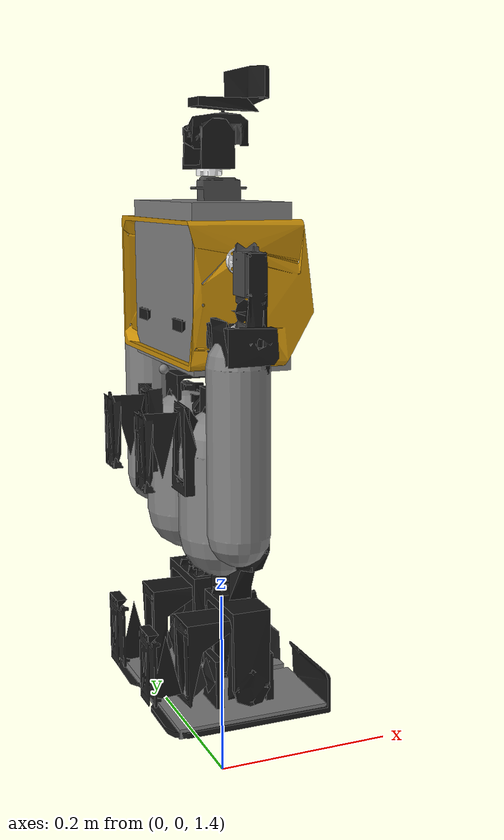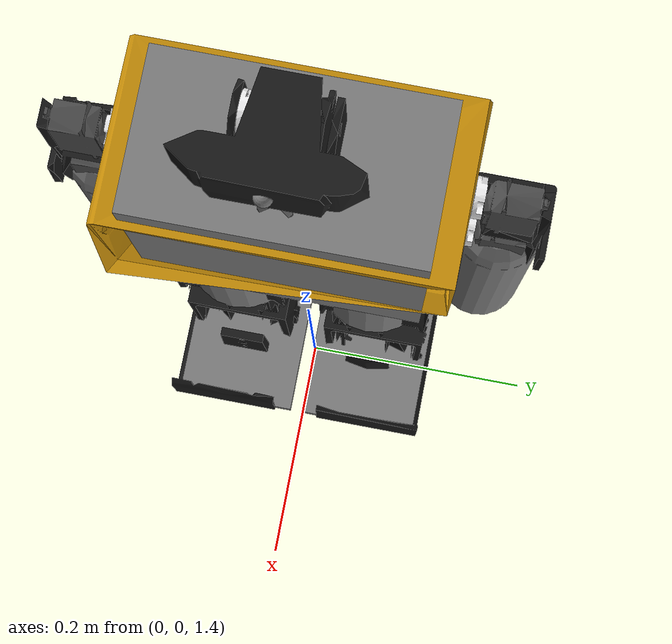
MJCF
<mujoco model="bez3">
	<include file="bez3.xml" />

	<visual>
		<headlight diffuse="0.6 0.6 0.6" ambient="0.3 0.3 0.3" specular="0 0 0"/>
		<rgba haze="0.15 0.25 0.35 1"/>
		<global azimuth="160" elevation="-20"/>
	</visual>

	<asset>
		<texture type="skybox" builtin="gradient" rgb1="0.3 0.5 0.7" rgb2="0 0 0" width="512" height="3072"/>
		<texture type="2d" name="groundplane" builtin="checker" mark="edge" rgb1="0.2 0.3 0.4" rgb2="0.1 0.2 0.3"
			markrgb="0.8 0.8 0.8" width="300" height="300"/>
		<material name="groundplane" texture="groundplane" texuniform="true" texrepeat="5 5" reflectance="0.2"/>
	</asset>

	<worldbody>
		<light pos="0 0 3.5" dir="0 0 -1" directional="true"/>
		<geom name="floor" size="0 0 0.05" pos="0 0 0" type="plane" material="groundplane"/>
	</worldbody>
</mujoco>

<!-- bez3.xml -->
<mujoco model="bez3">
  <compiler meshdir="meshes/bez3/" angle="radian" />
  <!--include file="common.xml" /-->

   <default>
        <default class="mx106">
            <position kp="21" forcerange="-8 8" />
            <joint damping="1.7" armature="0.025" frictionloss="0.10" />
        </default>
        <default class="mx64">
          <joint damping="1.084" armature="0.045" />
      <general ctrllimited="false" forcelimited="false" forcerange="-5 5" gainprm="10" biastype="affine" biasprm="0 0 -3.33" />
        </default>
		<default class="xm430">
            <position kp="21.1" ctrlrange="-3.141592 3.141592" forcerange="-5 5"/>
            <joint damping="1.084" armature="0.045" frictionloss="0.03"/>
        </default>
    </default>

  <asset>
    <mesh name="base_link" file="base_link.stl" scale="0.001 0.001 0.001"/>
    <mesh name="torso_1" file="torso_1.stl" scale="0.001 0.001 0.001"/>
    <mesh name="JX_servo_v12_1" file="JX_servo_v12_1.stl" scale="0.001 0.001 0.001"/>
    <mesh name="left_hip_side_1" file="left_hip_side_1.stl" scale="0.001 0.001 0.001"/>
    <mesh name="JX_servo_v12_8" file="JX_servo_v12_8.stl" scale="0.001 0.001 0.001"/>
    <mesh name="left_hip_front_1" file="left_hip_front_1.stl" scale="0.001 0.001 0.001"/>
    <mesh name="JX_servo_v12_9" file="JX_servo_v12_9.stl" scale="0.001 0.001 0.001"/>
    <mesh name="left_thigh_1" file="left_thigh_1.stl" scale="0.001 0.001 0.001"/>
    <mesh name="JX_servo_v12_11" file="JX_servo_v12_11.stl" scale="0.001 0.001 0.001"/>
    <mesh name="left_calve_1" file="left_calve_1.stl" scale="0.001 0.001 0.001"/>
    <mesh name="JX_servo_v12_12" file="JX_servo_v12_12.stl" scale="0.001 0.001 0.001"/>
    <mesh name="left_hip_front_2" file="left_hip_front_2.stl" scale="0.001 0.001 0.001"/>
    <mesh name="JX_servo_v12_13" file="JX_servo_v12_13.stl" scale="0.001 0.001 0.001"/>
    <mesh name="JX_servo_v12_14" file="JX_servo_v12_14.stl" scale="0.001 0.001 0.001"/>
    <mesh name="right_hip_side_1" file="right_hip_side_1.stl" scale="0.001 0.001 0.001"/>
    <mesh name="JX_servo_v12_15" file="JX_servo_v12_15.stl" scale="0.001 0.001 0.001"/>
    <mesh name="right_ankle_1" file="right_ankle_1.stl" scale="0.001 0.001 0.001"/>
    <mesh name="JX_servo_v12_16" file="JX_servo_v12_16.stl" scale="0.001 0.001 0.001"/>
    <mesh name="right_thigh_1" file="right_thigh_1.stl" scale="0.001 0.001 0.001"/>
    <mesh name="JX_servo_v12_17" file="JX_servo_v12_17.stl" scale="0.001 0.001 0.001"/>
    <mesh name="right_calve_1" file="right_calve_1.stl" scale="0.001 0.001 0.001"/>
    <mesh name="JX_servo_v12_18" file="JX_servo_v12_18.stl" scale="0.001 0.001 0.001"/>
    <mesh name="right_ankle_2" file="right_ankle_2.stl" scale="0.001 0.001 0.001"/>
    <mesh name="JX_servo_v12_19" file="JX_servo_v12_19.stl" scale="0.001 0.001 0.001"/>
    <mesh name="25t-servo-hub_1" file="25t-servo-hub_1.stl" scale="0.001 0.001 0.001"/>
    <mesh name="gobilda-servo_1" file="gobilda-servo_1.stl" scale="0.001 0.001 0.001"/>
    <mesh name="left_bicep_1" file="left_bicep_1.stl" scale="0.001 0.001 0.001"/>
    <mesh name="gobilda-servo_3" file="gobilda-servo_3.stl" scale="0.001 0.001 0.001"/>
    <mesh name="25t-servo-hub_2" file="25t-servo-hub_2.stl" scale="0.001 0.001 0.001"/>
    <mesh name="elbow-attach_1" file="elbow-attach_1.stl" scale="0.001 0.001 0.001"/>
    <mesh name="left_forearm_1" file="left_forearm_1.stl" scale="0.001 0.001 0.001"/>
    <mesh name="elbow-bearing_1" file="elbow-bearing_1.stl" scale="0.001 0.001 0.001"/>
    <mesh name="25t-servo-hub_Mirror__1" file="25t-servo-hub_Mirror__1.stl" scale="0.001 0.001 0.001"/>
    <mesh name="gobilda-servo_Mirror__1" file="gobilda-servo_Mirror__1.stl" scale="0.001 0.001 0.001"/>
    <mesh name="right_bicep_1" file="right_bicep_1.stl" scale="0.001 0.001 0.001"/>
    <mesh name="gobilda-servo_Mirror__2" file="gobilda-servo_Mirror__2.stl" scale="0.001 0.001 0.001"/>
    <mesh name="25t-servo-hub_Mirror__2" file="25t-servo-hub_Mirror__2.stl" scale="0.001 0.001 0.001"/>
    <mesh name="elbow-attach_Mirror__1" file="elbow-attach_Mirror__1.stl" scale="0.001 0.001 0.001"/>
    <mesh name="right_forearm_1" file="right_forearm_1.stl" scale="0.001 0.001 0.001"/>
    <mesh name="elbow-bearing_Mirror__1" file="elbow-bearing_Mirror__1.stl" scale="0.001 0.001 0.001"/>
    <mesh name="custom_servo_support__lower_neck__v2_1" file="custom_servo_support__lower_neck__v2_1.stl" scale="0.001 0.001 0.001"/>
    <mesh name="gobilda-servo_4" file="gobilda-servo_4.stl" scale="0.001 0.001 0.001"/>
    <mesh name="25t-servo-hub_3" file="25t-servo-hub_3.stl" scale="0.001 0.001 0.001"/>
    <mesh name="neck_1" file="neck_1.stl" scale="0.001 0.001 0.001"/>
    <mesh name="25t-servo-hub_4" file="25t-servo-hub_4.stl" scale="0.001 0.001 0.001"/>
    <mesh name="gobilda-servo_5" file="gobilda-servo_5.stl" scale="0.001 0.001 0.001"/>
    <mesh name="head_1" file="head_1.stl" scale="0.001 0.001 0.001"/>
    <mesh name="camera_1" file="camera_1.stl" scale="0.001 0.001 0.001"/>
    <mesh name="camera-link_1" file="camera-link_1.stl" scale="0.001 0.001 0.001"/>
    <mesh name="imu-link_1" file="imu-link_1.stl" scale="0.001 0.001 0.001"/>
    <mesh name="Component32_1" file="Component32_1.stl" scale="0.001 0.001 0.001"/>
    <mesh name="TX2_board_v2_1" file="TX2_board_v2_1.stl" scale="0.001 0.001 0.001"/>
    <mesh name="left_foot_1" file="left_foot_1.stl" scale="0.001 0.001 0.001"/>
    <mesh name="right_foot_1" file="right_foot_1.stl" scale="0.001 0.001 0.001"/>
  </asset>
    <option noslip_iterations="1"></option>
  <worldbody>
    <body name="torso_2023" pos="0 0 2"> <!-- euler="0 1.67 0"-->
      <freejoint name="root" />
        <site name="torso" pos=" 0 0 -0.075"/>
      <site name="trunk" pos="-0.06 0 -0.15" />

      <body name="torso_rot" euler="0 0 0">
        <geom type="mesh" contype="0" conaffinity="0" group="1" density="0" rgba="0.627451 0.627451 0.627451 1" mesh="base_link"/>
        <!--geom type="mesh" rgba="0.627451 0.627451 0.627451 1" mesh="base_link"/-->
        <geom type="mesh" contype="0" conaffinity="0" group="1" mass="0.1" density="0" rgba="0.784314 0.556863 0.027451 1" mesh="torso_1"/>
        <geom pos="-0.01 0 -0.064" type="box" mass="0" size="0.05 0.09 0.08" />
        <!--geom type="mesh" rgba="0.784314 0.556863 0.027451 1" mesh="torso_1"/-->
        <geom type="mesh" contype="0" conaffinity="0" group="1" density="0" rgba="0.0980392 0.0980392 0.0980392 1" mesh="JX_servo_v12_1"/>
        <!--geom type="mesh" rgba="0.0980392 0.0980392 0.0980392 1" mesh="JX_servo_v12_1"/-->
        <geom type="mesh" contype="0" conaffinity="0" group="1" density="0" rgba="0.0980392 0.0980392 0.0980392 1" mesh="JX_servo_v12_14"/>
        <!--geom type="mesh" rgba="0.0980392 0.0980392 0.0980392 1" mesh="JX_servo_v12_14"/-->
        <geom type="mesh" contype="0" conaffinity="0" group="1" density="0" rgba="0.960784 0.960784 0.964706 1" mesh="25t-servo-hub_1"/>
        <!--geom type="mesh" rgba="0.960784 0.960784 0.964706 1" mesh="25t-servo-hub_1"/-->
        <geom type="mesh" contype="0" conaffinity="0" group="1" density="0" rgba="0.960784 0.960784 0.964706 1" mesh="25t-servo-hub_Mirror__1"/>
        <!--geom type="mesh" rgba="0.960784 0.960784 0.964706 1" mesh="25t-servo-hub_Mirror__1"/-->
        <geom type="mesh" contype="0" conaffinity="0" group="1" density="0" rgba="0.0980392 0.0980392 0.0980392 1" mesh="custom_servo_support__lower_neck__v2_1"/>
        <!--geom type="mesh" rgba="0.0980392 0.0980392 0.0980392 1" mesh="custom_servo_support__lower_neck__v2_1"/-->
        <geom type="mesh" contype="0" conaffinity="0" group="1" density="0" rgba="0.290196 0.290196 0.290196 1" mesh="gobilda-servo_4"/>
        <!--geom type="mesh" rgba="0.290196 0.290196 0.290196 1" mesh="gobilda-servo_4"/-->
        <geom type="mesh" contype="0" conaffinity="0" group="1" density="0" rgba="0.160784 0.505882 0.807843 1" mesh="Component32_1"/>
        <!--geom type="mesh" rgba="0.160784 0.505882 0.807843 1" mesh="Component32_1"/-->
        <geom type="mesh" contype="0" conaffinity="0" group="1" density="0" rgba="0.7 0.7 0.7 1" mesh="TX2_board_v2_1"/>
        <!--geom type="mesh" rgba="0.7 0.7 0.7 1" mesh="TX2_board_v2_1"/-->
        <body name="left_hip_side_1" pos="-0.0045 0.0545 -0.16339">
          <inertial pos="-0.000660176 7.98424e-10 -0.0211415" quat="0.5 0.5 0.5 0.5" mass="0.0189998" diaginertia="1.8e-05 1.4e-05 9e-06"/>
          <joint class="mx64" name="left_hip_yaw" pos="0 0 0" axis="0 0 1"  />
          <geom pos="0.0045 -0.0545 0.16339" type="mesh" contype="0" conaffinity="0" group="1" density="0" rgba="0.0980392 0.0980392 0.0980392 1" mesh="left_hip_side_1"/>
          <!--geom pos="0.0045 -0.0545 0.16339" type="mesh" rgba="0.0980392 0.0980392 0.0980392 1" mesh="left_hip_side_1"/-->
          <body name="JX_servo_v12_8" pos="-0.03 0 -0.035336">
            <inertial pos="-0.00457814 -0.000422492 -0.0194649" quat="0.513019 0.493752 0.510815 0.481755" mass="0.423047" diaginertia="0.000742563 0.0006386 0.000268572"/>
             <joint class="mx64" name="left_hip_roll" pos="0 0 0" axis="-1 0 0"   />
            <geom pos="0.0345 -0.0545 0.198726" type="mesh" contype="0" conaffinity="0" group="1" density="0" rgba="0.0980392 0.0980392 0.0980392 1" mesh="JX_servo_v12_8"/>
            <!--geom pos="0.0345 -0.0545 0.198726" type="mesh" rgba="0.0980392 0.0980392 0.0980392 1" mesh="JX_servo_v12_8"/-->
            <geom pos="0.0345 -0.0545 0.198726" type="mesh" contype="0" conaffinity="0" group="1" density="0" rgba="0.0980392 0.0980392 0.0980392 1" mesh="left_hip_front_1"/>
            <!--geom pos="0.0345 -0.0545 0.198726" type="mesh" rgba="0.0980392 0.0980392 0.0980392 1" mesh="left_hip_front_1"/-->
            <geom pos="0.0345 -0.0545 0.198726" type="mesh" contype="0" conaffinity="0" group="1" density="0" rgba="0.0980392 0.0980392 0.0980392 1" mesh="JX_servo_v12_9"/>
            <!--geom pos="0.0345 -0.0545 0.198726" type="mesh" rgba="0.0980392 0.0980392 0.0980392 1" mesh="JX_servo_v12_9"/-->
            <body name="left_thigh_1" pos="0.0295 0.0379 0">
              <inertial pos="0.00355223 -0.037286 -0.0673853" quat="0.999801 0 -0.0199562 0" mass="0.0469874" diaginertia="0.00014412 8.9e-05 6.88802e-05"/>
               <joint class="mx64" name="left_hip_pitch" pos="0 0 0" axis="0 1 0"   />
              <geom pos="0.005 -0.0924 0.198726" type="mesh" contype="0" conaffinity="0" group="1" density="0" rgba="0.0980392 0.0980392 0.0980392 1" mesh="left_thigh_1"/>
              <!--geom pos="0.005 -0.0924 0.198726" type="mesh" rgba="0.0980392 0.0980392 0.0980392 1" mesh="left_thigh_1"/-->
              <geom pos="-0.014 -0.04 -0.07" type="capsule" mass="0" size="0.043 0.043 0.12" />
              <body name="JX_servo_v12_11" pos="0 0 -0.124">
                <inertial pos="-7.61703e-06 -0.038798 -0.0287705" quat="0.99982 -0.0189961 0.000220296 2.84536e-05" mass="0.234224" diaginertia="0.000368962 0.000288189 0.000119773"/>
                 <joint class="mx64" name="left_knee" pos="0 0 0" axis="0 1 0"   />
                <geom pos="0.005 -0.0924 0.322726" type="mesh" contype="0" conaffinity="0" group="1" density="0" rgba="0.0980392 0.0980392 0.0980392 1" mesh="JX_servo_v12_11"/>
                <!--geom pos="0.005 -0.0924 0.322726" type="mesh" rgba="0.0980392 0.0980392 0.0980392 1" mesh="JX_servo_v12_11"/-->
                <geom pos="0.005 -0.0924 0.322726" type="mesh" contype="0" conaffinity="0" group="1" density="0" rgba="0.0980392 0.0980392 0.0980392 1" mesh="left_calve_1"/>
                <!--geom pos="0.005 -0.0924 0.322726" type="mesh" rgba="0.0980392 0.0980392 0.0980392 1" mesh="left_calve_1"/-->
                <body name="JX_servo_v12_12" pos="-5e-05 0.0016 -0.139905">
                  <inertial pos="-0.0340781 -0.039009 0.0194651" quat="0.485816 0.512986 0.481901 0.518266" mass="0.423047" diaginertia="0.000742644 0.000638296 0.000268545"/>
                   <joint class="mx64" name="left_ankle_pitch" pos="0 0 0" axis="0 1 0"   />
                  <geom pos="0.00505 -0.094 0.462631" type="mesh" contype="0" conaffinity="0" group="1" density="0" rgba="0.0980392 0.0980392 0.0980392 1" mesh="JX_servo_v12_12"/>
                  <!--geom pos="0.00505 -0.094 0.462631" type="mesh" rgba="0.0980392 0.0980392 0.0980392 1" mesh="JX_servo_v12_12"/-->
                  <geom pos="0.00505 -0.094 0.462631" type="mesh" contype="0" conaffinity="0" group="1" density="0" rgba="0.0980392 0.0980392 0.0980392 1" mesh="left_hip_front_2"/>
                  <!--geom pos="0.00505 -0.094 0.462631" type="mesh" rgba="0.0980392 0.0980392 0.0980392 1" mesh="left_hip_front_2"/-->
                  <geom pos="0.00505 -0.094 0.462631" type="mesh" contype="0" conaffinity="0" group="1" density="0" rgba="0.0980392 0.0980392 0.0980392 1" mesh="JX_servo_v12_13"/>
                  <!--geom pos="0.00505 -0.094 0.462631" type="mesh" rgba="0.0980392 0.0980392 0.0980392 1" mesh="JX_servo_v12_13"/-->
                  <body name="left_foot_1" pos="-0.0295 -0.039 0">
                    <inertial pos="0.0356643 0.00794366 -0.0251471" quat="0.0747217 0.686511 0.0733634 0.719539" mass="0.123535" diaginertia="0.00035306 0.000318503 9.44367e-05"/>
                     <joint class="mx64" name="left_ankle_roll" pos="0 0 0" axis="-1 0 0"   />
                    <geom pos="0.03455 -0.055 0.462631" type="mesh" contype="0" conaffinity="0" group="1" density="0" rgba="0.0980392 0.0980392 0.0980392 1" mesh="left_foot_1"/>
                    <!--geom pos="0.03455 -0.055 0.462631" type="mesh" rgba="0.0980392 0.0980392 0.0980392 1" mesh="left_foot_1"/-->

                    <!-- MANUAL ELEMENT -->
                    <body name="left_foot" pos="0.03 0 -0.033">
                        <site name="left_foot" />
                      <geom name="left_foot" mass="0" type="box" size="0.08 0.05 0.005" />
                    </body>
                  </body>
                </body>
              </body>
            </body>
          </body>
        </body>
        <body name="right_hip_side_1" pos="-0.0045 -0.0545 -0.1634">
          <inertial pos="-0.000660176 -7.98424e-10 -0.0211416" quat="0.5 0.5 0.5 0.5" mass="0.0189998" diaginertia="1.8e-05 1.4e-05 9e-06"/>
           <joint class="mx64" name="right_hip_yaw" pos="0 0 0" axis="0 0 -1"  />
          <geom pos="0.0045 0.0545 0.1634" type="mesh" contype="0" conaffinity="0" group="1" density="0" rgba="0.0980392 0.0980392 0.0980392 1" mesh="right_hip_side_1"/>
          <!--geom pos="0.0045 0.0545 0.1634" type="mesh" rgba="0.0980392 0.0980392 0.0980392 1" mesh="right_hip_side_1"/-->
          <body name="JX_servo_v12_15" pos="-0.03 0 -0.035336">
            <inertial pos="-0.00457814 0.000422492 -0.0194649" quat="0.481755 0.510815 0.493752 0.513019" mass="0.423047" diaginertia="0.000742563 0.0006386 0.000268572"/>
             <joint class="mx64" name="right_hip_roll" pos="0 0 0" axis="1 0 0"  />
            <geom pos="0.0345 0.0545 0.198736" type="mesh" contype="0" conaffinity="0" group="1" density="0" rgba="0.0980392 0.0980392 0.0980392 1" mesh="JX_servo_v12_15"/>
            <!--geom pos="0.0345 0.0545 0.198736" type="mesh" rgba="0.0980392 0.0980392 0.0980392 1" mesh="JX_servo_v12_15"/-->
            <geom pos="0.0345 0.0545 0.198736" type="mesh" contype="0" conaffinity="0" group="1" density="0" rgba="0.0980392 0.0980392 0.0980392 1" mesh="right_ankle_1"/>
            <!--geom pos="0.0345 0.0545 0.198736" type="mesh" rgba="0.0980392 0.0980392 0.0980392 1" mesh="right_ankle_1"/-->
            <geom pos="0.0345 0.0545 0.198736" type="mesh" contype="0" conaffinity="0" group="1" density="0" rgba="0.0980392 0.0980392 0.0980392 1" mesh="JX_servo_v12_16"/>
            <!--geom pos="0.0345 0.0545 0.198736" type="mesh" rgba="0.0980392 0.0980392 0.0980392 1" mesh="JX_servo_v12_16"/-->
            <body name="right_thigh_1" pos="0.0295 -0.0379 0">
              <inertial pos="0.00355223 0.037286 -0.0673853" quat="0.999801 0 -0.0199562 0" mass="0.0469873" diaginertia="0.00014412 8.9e-05 6.88802e-05"/>
               <joint class="mx64" name="right_hip_pitch" pos="0 0 0" axis="0 1 0"  />
              <geom pos="0.005 0.0924 0.198736" type="mesh" contype="0" conaffinity="0" group="1" density="0" rgba="0.0980392 0.0980392 0.0980392 1" mesh="right_thigh_1"/>
              <!--geom pos="0.005 0.0924 0.198736" type="mesh" rgba="0.0980392 0.0980392 0.0980392 1" mesh="right_thigh_1"/-->
              <geom pos="-0.014 0.04 -0.07" type="capsule" mass="0" size="0.043 0.043 0.12" />
              <body name="JX_servo_v12_17" pos="0 0 -0.124">
                <inertial pos="-7.61703e-06 0.038798 -0.0287706" quat="0.99982 0.0189957 0.000220296 -2.84537e-05" mass="0.234224" diaginertia="0.000368962 0.000288189 0.000119773"/>
                 <joint class="mx64" name="right_knee" pos="0 0 0" axis="0 1 0" />
                <geom pos="0.005 0.0924 0.322736" type="mesh" contype="0" conaffinity="0" group="1" density="0" rgba="0.0980392 0.0980392 0.0980392 1" mesh="JX_servo_v12_17"/>
                <!--geom pos="0.005 0.0924 0.322736" type="mesh" rgba="0.0980392 0.0980392 0.0980392 1" mesh="JX_servo_v12_17"/-->
                <geom pos="0.005 0.0924 0.322736" type="mesh" contype="0" conaffinity="0" group="1" density="0" rgba="0.0980392 0.0980392 0.0980392 1" mesh="right_calve_1"/>
                <!--geom pos="0.005 0.0924 0.322736" type="mesh" rgba="0.0980392 0.0980392 0.0980392 1" mesh="right_calve_1"/-->
                <body name="JX_servo_v12_18" pos="-5e-05 -0.0016 -0.139905">
                  <inertial pos="-0.0340781 0.039009 0.0194651" quat="0.518266 0.481901 0.512986 0.485816" mass="0.423047" diaginertia="0.000742644 0.000638296 0.000268545"/>
                   <joint class="mx64" name="right_ankle_pitch" pos="0 0 0" axis="0 1 0" />
                  <geom pos="0.00505 0.094 0.462641" type="mesh" contype="0" conaffinity="0" group="1" density="0" rgba="0.0980392 0.0980392 0.0980392 1" mesh="JX_servo_v12_18"/>
                  <!--geom pos="0.00505 0.094 0.462641" type="mesh" rgba="0.0980392 0.0980392 0.0980392 1" mesh="JX_servo_v12_18"/-->
                  <geom pos="0.00505 0.094 0.462641" type="mesh" contype="0" conaffinity="0" group="1" density="0" rgba="0.0980392 0.0980392 0.0980392 1" mesh="right_ankle_2"/>
                  <!--geom pos="0.00505 0.094 0.462641" type="mesh" rgba="0.0980392 0.0980392 0.0980392 1" mesh="right_ankle_2"/-->
                  <geom pos="0.00505 0.094 0.462641" type="mesh" contype="0" conaffinity="0" group="1" density="0" rgba="0.0980392 0.0980392 0.0980392 1" mesh="JX_servo_v12_19"/>
                  <!--geom pos="0.00505 0.094 0.462641" type="mesh" rgba="0.0980392 0.0980392 0.0980392 1" mesh="JX_servo_v12_19"/-->
                  <body name="right_foot_1" pos="-0.0295 0.039 0">
                    <inertial pos="0.0356643 -0.00794365 -0.0251471" quat="-0.0747217 0.686511 -0.0733634 0.719539" mass="0.123535" diaginertia="0.00035306 0.000318503 9.44367e-05"/>
                     <joint class="mx64" name="right_ankle_roll" pos="0 0 0" axis="1 0 0"   />
                    <geom pos="0.03455 0.055 0.462641" type="mesh" contype="0" conaffinity="0" group="1" density="0" rgba="0.0980392 0.0980392 0.0980392 1" mesh="right_foot_1"/>
                    <!--geom pos="0.03455 0.055 0.462641" type="mesh" rgba="0.0980392 0.0980392 0.0980392 1" mesh="right_foot_1"/-->

                    <!-- MANUAL ELEMENT -->
                    <body name="right_foot" pos="0.03 0 -0.033">
                      <geom name="right_foot" mass="0" type="box" size="0.08 0.05 0.005" />
                        <site name="right_foot" />
                    </body>
                  </body>
                </body>
              </body>
            </body>
          </body>
        </body>
        <body name="gobilda-servo_1" pos="-0.021 0.110294 -0.0365">
          <inertial pos="1.2273e-09 0.02218 -0.0456737" quat="0.999978 0.00664033 0 0" mass="0.13263" diaginertia="0.000189096 0.000178541 1.85547e-05"/>
          <joint class="mx64" name="left_shoulder_pitch" pos="0 0 0" axis="0 1 0" />
          <geom pos="0.021 -0.110294 0.0365" type="mesh" contype="0" conaffinity="0" group="1" density="0" rgba="0.290196 0.290196 0.290196 1" mesh="gobilda-servo_1"/>
          <!--geom pos="0.021 -0.110294 0.0365" type="mesh" rgba="0.290196 0.290196 0.290196 1" mesh="gobilda-servo_1"/-->
          <geom pos="0.021 -0.110294 0.0365" type="mesh" contype="0" conaffinity="0" group="1" density="0" rgba="0.0980392 0.0980392 0.0980392 1" mesh="left_bicep_1"/>
          <!--geom pos="0.021 -0.110294 0.0365" type="mesh" rgba="0.0980392 0.0980392 0.0980392 1" mesh="left_bicep_1"/-->
          <geom pos="0.021 -0.110294 0.0365" type="mesh" contype="0" conaffinity="0" group="1" density="0" rgba="0.290196 0.290196 0.290196 1" mesh="gobilda-servo_3"/>
          <!--geom pos="0.021 -0.110294 0.0365" type="mesh" rgba="0.290196 0.290196 0.290196 1" mesh="gobilda-servo_3"/-->
          <body name="25t-servo-hub_2" pos="0 0 -0.0703">
            <inertial pos="-0.0182716 0.0186695 -0.0374471" quat="0.986686 0.0371119 0.036951 0.153977" mass="0.0430401" diaginertia="0.000103618 9.72453e-05 2.00127e-05"/>
             <joint class="mx64" name="left_elbow" pos="0 0 0" axis="0 1 0" />
            <geom pos="0.021 -0.110294 0.1068" type="mesh" contype="0" conaffinity="0" group="1" density="0" rgba="0.960784 0.960784 0.964706 1" mesh="25t-servo-hub_2"/>
            <!--geom pos="0.021 -0.110294 0.1068" type="mesh" rgba="0.960784 0.960784 0.964706 1" mesh="25t-servo-hub_2"/-->
            <geom pos="0.021 -0.110294 0.1068" type="mesh" contype="0" conaffinity="0" group="1" density="0" rgba="0.0980392 0.0980392 0.0980392 1" mesh="elbow-attach_1"/>
            <!--geom pos="0.021 -0.110294 0.1068" type="mesh" rgba="0.0980392 0.0980392 0.0980392 1" mesh="elbow-attach_1"/-->
            <geom pos="0.021 -0.110294 0.1068" type="mesh" contype="0" conaffinity="0" group="1" density="0" rgba="0.0980392 0.0980392 0.0980392 1" mesh="left_forearm_1"/>
            <geom pos="-0.01 0.02 -0.104" type="capsule" mass="0" size="0.03 0.08" />
            <!--geom pos="0.021 -0.110294 0.1068" type="mesh" rgba="0.0980392 0.0980392 0.0980392 1" mesh="left_forearm_1"/-->
            <geom pos="0.021 -0.110294 0.1068" type="mesh" contype="0" conaffinity="0" group="1" density="0" rgba="0.0980392 0.0980392 0.0980392 1" mesh="elbow-bearing_1"/>
            <!--geom pos="0.021 -0.110294 0.1068" type="mesh" rgba="0.0980392 0.0980392 0.0980392 1" mesh="elbow-bearing_1"/-->
          </body>
        </body>
        <body name="gobilda-servo_Mirror__1" pos="-0.021 -0.110294 -0.0365">
          <inertial pos="1.2273e-09 -0.02218 -0.0456737" quat="0.999978 -0.00664033 0 0" mass="0.13263" diaginertia="0.000189096 0.000178541 1.85547e-05"/>
           <joint class="mx64" name="right_shoulder_pitch" pos="0 0 0" axis="0 1 0" />
          <geom pos="0.021 0.110294 0.0365" type="mesh" contype="0" conaffinity="0" group="1" density="0" rgba="0.290196 0.290196 0.290196 1" mesh="gobilda-servo_Mirror__1"/>
          <!--geom pos="0.021 0.110294 0.0365" type="mesh" rgba="0.290196 0.290196 0.290196 1" mesh="gobilda-servo_Mirror__1"/-->
          <geom pos="0.021 0.110294 0.0365" type="mesh" contype="0" conaffinity="0" group="1" density="0" rgba="0.0980392 0.0980392 0.0980392 1" mesh="right_bicep_1"/>
          <!--geom pos="0.021 0.110294 0.0365" type="mesh" rgba="0.0980392 0.0980392 0.0980392 1" mesh="right_bicep_1"/-->
          <geom pos="0.021 0.110294 0.0365" type="mesh" contype="0" conaffinity="0" group="1" density="0" rgba="0.290196 0.290196 0.290196 1" mesh="gobilda-servo_Mirror__2"/>
          <!--geom pos="0.021 0.110294 0.0365" type="mesh" rgba="0.290196 0.290196 0.290196 1" mesh="gobilda-servo_Mirror__2"/-->
          <body name="25t-servo-hub_Mirror__2" pos="0 0 -0.0703">
            <inertial pos="-0.0182716 -0.0186696 -0.0374472" quat="0.986684 -0.037112 0.036952 -0.153985" mass="0.0430399" diaginertia="0.000103618 9.72455e-05 2.00128e-05"/>
             <joint class="mx64" name="right_elbow" pos="0 0 0" axis="0 1 0" />
            <geom pos="0.021 0.110294 0.1068" type="mesh" contype="0" conaffinity="0" group="1" density="0" rgba="0.960784 0.960784 0.964706 1" mesh="25t-servo-hub_Mirror__2"/>
            <!--geom pos="0.021 0.110294 0.1068" type="mesh" rgba="0.960784 0.960784 0.964706 1" mesh="25t-servo-hub_Mirror__2"/-->
            <geom pos="0.021 0.110294 0.1068" type="mesh" contype="0" conaffinity="0" group="1" density="0" rgba="0.0980392 0.0980392 0.0980392 1" mesh="elbow-attach_Mirror__1"/>
            <!--geom pos="0.021 0.110294 0.1068" type="mesh" rgba="0.0980392 0.0980392 0.0980392 1" mesh="elbow-attach_Mirror__1"/-->
            <geom pos="0.021 0.110294 0.1068" type="mesh" contype="0" conaffinity="0" group="1" density="0" rgba="0.0980392 0.0980392 0.0980392 1" mesh="right_forearm_1"/>
            <geom pos="-0.01 -0.02 -0.104" type="capsule" mass="0" size="0.03 0.08" />
            <!--geom pos="0.021 0.110294 0.1068" type="mesh" rgba="0.0980392 0.0980392 0.0980392 1" mesh="right_forearm_1"/-->
            <geom pos="0.021 0.110294 0.1068" type="mesh" contype="0" conaffinity="0" group="1" density="0" rgba="0.0980392 0.0980392 0.0980392 1" mesh="elbow-bearing_Mirror__1"/>
            <!--geom pos="0.021 0.110294 0.1068" type="mesh" rgba="0.0980392 0.0980392 0.0980392 1" mesh="elbow-bearing_Mirror__1"/-->
          </body>
        </body>
        <body name="25t-servo-hub_3" pos="-0.00965 0 0.04387">
          <inertial pos="-2.21353e-07 -0.00357555 0.0177924" quat="0.875219 0.483727 -4.49345e-07 -2.33377e-06" mass="0.0241101" diaginertia="1.65659e-05 1.3012e-05 8.55391e-06"/>
           <joint class="mx64" name="head_yaw" pos="0 0 0" axis="0 0 1" />
          <geom pos="0.00965 0 -0.04387" type="mesh" contype="0" conaffinity="0" group="1" density="0" rgba="0.960784 0.960784 0.964706 1" mesh="25t-servo-hub_3"/>
          <!--geom pos="0.00965 0 -0.04387" type="mesh" rgba="0.960784 0.960784 0.964706 1" mesh="25t-servo-hub_3"/-->
          <geom pos="0.00965 0 -0.04387" type="mesh" contype="0" conaffinity="0" group="1" density="0" rgba="0.0980392 0.0980392 0.0980392 1" mesh="neck_1"/>
          <!--geom pos="0.00965 0 -0.04387" type="mesh" rgba="0.0980392 0.0980392 0.0980392 1" mesh="neck_1"/-->
          <geom pos="0.00965 0 -0.04387" type="mesh" contype="0" conaffinity="0" group="1" density="0" rgba="0.960784 0.960784 0.964706 1" mesh="25t-servo-hub_4"/>
          <!--geom pos="0.00965 0 -0.04387" type="mesh" rgba="0.960784 0.960784 0.964706 1" mesh="25t-servo-hub_4"/-->
          <body name="gobilda-servo_5" pos="0 -0.019393 0.036611">
            <inertial pos="0.0219242 0.0226331 0.0236831" quat="0.943429 -0.00665966 0.331227 0.0136109" mass="0.162498" diaginertia="0.000158379 0.000134981 6.9115e-05"/>
             <joint class="mx64" name="head_pitch" pos="0 0 0" axis="0 1 0" />
            <geom pos="0.00965 0.019393 -0.080481" type="mesh" contype="0" conaffinity="0" group="1" density="0" rgba="0.290196 0.290196 0.290196 1" mesh="gobilda-servo_5"/>
            <!--geom pos="0.00965 0.019393 -0.080481" type="mesh" rgba="0.290196 0.290196 0.290196 1" mesh="gobilda-servo_5"/-->
            <geom pos="0.00965 0.019393 -0.080481" type="mesh" contype="0" conaffinity="0" group="1" density="0" rgba="0.0980392 0.0980392 0.0980392 1" mesh="head_1"/>
            <!--geom pos="0.00965 0.019393 -0.080481" type="mesh" rgba="0.0980392 0.0980392 0.0980392 1" mesh="head_1"/-->
            <geom pos="0.00965 0.019393 -0.080481" type="mesh" contype="0" conaffinity="0" group="1" density="0" rgba="0.0980392 0.0980392 0.0980392 1" mesh="camera_1"/>
            <!--geom pos="0.00965 0.019393 -0.080481" type="mesh" rgba="0.0980392 0.0980392 0.0980392 1" mesh="camera_1"/-->
            <body name="camera-link_1" pos="0.0537 0.02288 0.048">
                <site name="camera" />
              <inertial pos="0.000500001 -3.12984e-10 4.70062e-07" mass="0.00019625" diaginertia="1e-06 1e-06 1e-06"/>
              <!--joint name="camera_joint" pos="0 0 0" axis="1 0 0" /-->
              <geom pos="-0.04405 -0.003487 -0.128481" type="mesh" contype="0" conaffinity="0" group="1" density="0" rgba="0.627451 0.627451 0.627451 1" mesh="camera-link_1"/>
              <!--geom pos="-0.04405 -0.003487 -0.128481" type="mesh" rgba="0.627451 0.627451 0.627451 1" mesh="camera-link_1"/-->
            </body>
          </body>
        </body>
        <body name="imu-link_1" pos="0 0 -0.005">
          <inertial pos="0 0 -0.0495" mass="0.00019625" diaginertia="1e-06 1e-06 1e-06"/>
          <!--joint name="imu_joint" pos="0 0 0" axis="0 0 1" /-->
          <geom pos="0 0 0.005" type="mesh" contype="0" conaffinity="0" group="1" density="0" rgba="0.627451 0.627451 0.627451 1" mesh="imu-link_1"/>
          <!--geom pos="0 0 0.005" type="mesh" rgba="0.627451 0.627451 0.627451 1" mesh="imu-link_1"/-->
        </body>
      </body>
    </body>
  </worldbody>

  <actuator>
    <position  class="mx64" ctrlrange="-0.723 0.534" name="left_hip_roll" joint="left_hip_roll" />
    <position  class="mx64" ctrlrange="-2.23 0.66" name="left_hip_pitch" joint="left_hip_pitch" />
    <position  class="mx64" ctrlrange="-0.34 1.2 " name="left_knee" joint="left_knee" />
    <position  class="mx64" ctrlrange=" -1.23 0.3 " name="left_ankle_pitch" joint="left_ankle_pitch" />
    <position  class="mx64" ctrlrange="-0.251 0.251" name="left_ankle_roll" joint="left_ankle_roll" />
    <position  class="mx64" ctrlrange="-0.723 0.534" name="right_hip_roll" joint="right_hip_roll" />
    <position  class="mx64" ctrlrange="-2.23 0.66" name="right_hip_pitch" joint="right_hip_pitch" />
    <position  class="mx64" ctrlrange="-0.34 1.21 " name="right_knee" joint="right_knee" />
    <position  class="mx64" ctrlrange=" -1.23 0.3 " name="right_ankle_pitch" joint="right_ankle_pitch" />
    <position  class="mx64" ctrlrange="-0.251 0.251" name="right_ankle_roll" joint="right_ankle_roll" />
    <position  class="mx64" ctrlrange="-1.57 1.57" name="head_yaw" joint="head_yaw" />
    <position  class="mx64" ctrlrange="0 1.57" name="head_pitch" joint="head_pitch" />
    <position  class="mx64" ctrlrange="-1.51 1.51" name="left_hip_yaw" joint="left_hip_yaw" />

    <position  class="mx64" ctrlrange="-1.51 1.51" name="right_hip_yaw" joint="right_hip_yaw" />
    <position class="mx64" ctrlrange=" -3.92699 3.14159" name="left_shoulder_pitch" joint="left_shoulder_pitch" />
    <position  class="mx64" ctrlrange="-3.14159 0" name="left_elbow" joint="left_elbow" />
    <position  class="mx64"  ctrlrange=" -3.92699 3.14159" name="right_shoulder_pitch" joint="right_shoulder_pitch" />
    <position  class="mx64" ctrlrange="-3.14159 0" name="right_elbow" joint="right_elbow" />

  </actuator>

  <sensor>
    <gyro name="gyro" site="torso" />
    <accelerometer name="accelerometer" site="torso" />
  </sensor>

</mujoco>
